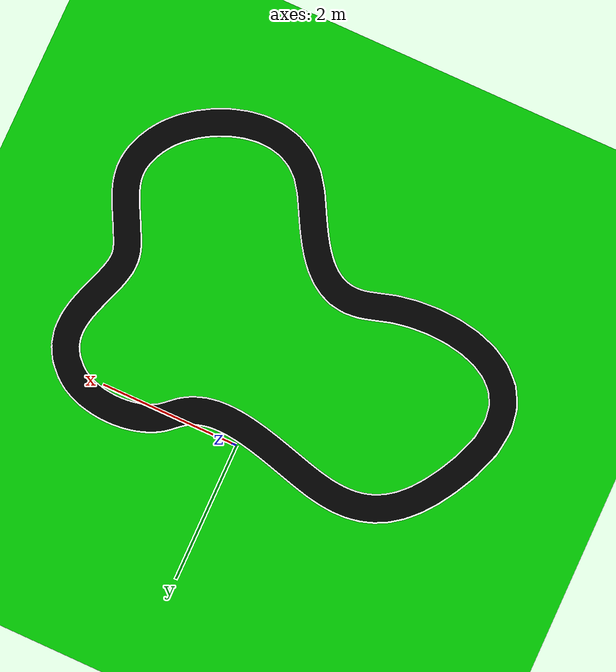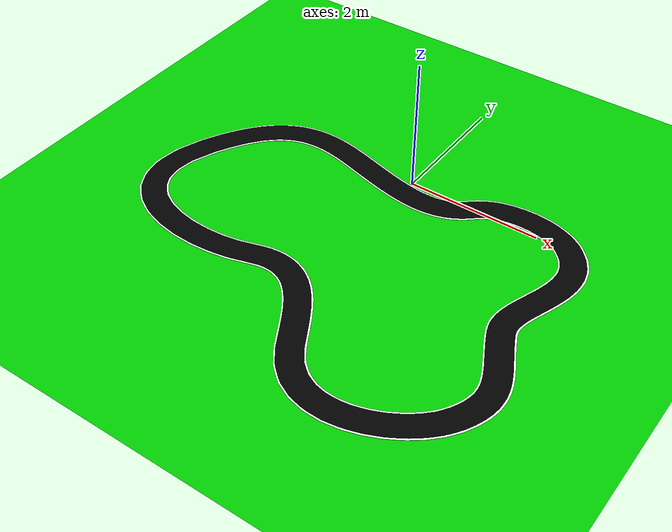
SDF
<?xml version="1.0" ?>

<sdf version='1.6'>
  <world name='empty'>
    <physics name='4ms' type='ode'>
      <max_step_size>0.004</max_step_size>
      <real_time_factor>1</real_time_factor>
      <real_time_update_rate>250</real_time_update_rate>
    </physics>
    <plugin name='gz::sim::systems::Physics' filename='gz-sim-physics-system'/>
    <plugin name='gz::sim::systems::UserCommands' filename='gz-sim-user-commands-system'/>
    <plugin name='gz::sim::systems::SceneBroadcaster' filename='gz-sim-scene-broadcaster-system'/>
    <plugin name='gz::sim::systems::Contact' filename='gz-sim-contact-system'/>
    <plugin filename="gz-sim-sensors-system" name="gz::sim::systems::Sensors">
      <render_engine>ogre2</render_engine>
    </plugin>
    <plugin filename="gz-sim-imu-system" name="gz::sim::systems::Imu"/>
    <plugin filename="gz-sim-navsat-system" name="gz::sim::systems::NavSat"/>

    <spherical_coordinates>
      <surface_model>EARTH_WGS84</surface_model>
      <world_frame_orientation>ENU</world_frame_orientation>
      <latitude_deg>47.478950</latitude_deg>
      <longitude_deg>19.057785</longitude_deg>
      <elevation>0</elevation>
      <heading_deg>0</heading_deg>
    </spherical_coordinates>

    <gravity>0 0 -9.8000000000000007</gravity>
    <magnetic_field>5.5644999999999998e-06 2.2875799999999999e-05 -4.2388400000000002e-05</magnetic_field>
    <atmosphere type='adiabatic'/>
    <scene>
      <ambient>0.400000006 0.400000006 0.400000006 1</ambient>
      <background>0.699999988 0.699999988 0.699999988 1</background>
      <shadows>true</shadows>
    </scene>

    <model name='ground_plane'>
      <static>true</static>
      <link name='link'>
        <collision name='collision'>
          <geometry>
            <plane>
              <normal>0 0 1</normal>
              <size>100 100</size>
            </plane>
          </geometry>
          <surface>
            <friction>
              <ode>
                <mu>1</mu>
                <mu2>1</mu2>
                <fdir1>0 0 0</fdir1>
                <slip1>0</slip1>
                <slip2>0</slip2>
              </ode>
            </friction>
            <bounce/>
            <contact/>
          </surface>
        </collision>
        <pose>0 0 0.0025 0 0 0</pose>
        <visual name='visual'>
          <geometry>
            <plane>
              <normal>0 0 1</normal>
              <size>100 100</size>
            </plane>
          </geometry>
          <material>
            <ambient>0.0 0.8 0.0 1</ambient>
            <diffuse>0.0 0.8 0.0 1</diffuse>
            <specular>0.0 0.8 0.0 1</specular>
          </material>
        </visual>
      </link>
    </model>

    <model name='track_with_road'>
      <static>true</static>
      <link name='link'>
        <visual name='visual'>
          <geometry>
            <mesh>
              <uri>file:///home/mibalazs/ros2_ws/KR_project_ws/src/KogRob-EtoE-NN-Driving/gazebo_models/track_with_road/meshes/track_with_road.dae</uri>
            </mesh>
          </geometry>
        </visual>
        <collision name='collision'>
          <geometry>
            <mesh>
              <uri>file:///home/mibalazs/ros2_ws/KR_project_ws/src/KogRob-EtoE-NN-Driving/gazebo_models/track_with_road/meshes/track_with_road.dae</uri>
            </mesh>
          </geometry>
          <surface>
            <friction>
              <ode>
                <mu>100</mu>
                <mu2>50</mu2>
                <fdir1>0 0 0</fdir1>
                <slip1>0</slip1>
                <slip2>0</slip2>
              </ode>
            </friction>
          </surface>
        </collision>
        <pose>0 0 0 0 0 0</pose>
        <inertial>
          <pose>0 0 0 0 0 0</pose>
          <mass>1</mass>
          <inertia>
            <ixx>1</ixx>
            <ixy>0</ixy>
            <ixz>0</ixz>
            <iyy>1</iyy>
            <iyz>0</iyz>
            <izz>1</izz>
          </inertia>
        </inertial>
        <enable_wind>false</enable_wind>
      </link>
    </model>

    <light type="directional" name="sun">
      <cast_shadows>true</cast_shadows>
      <pose>0 0 10 0 0 0</pose>
      <diffuse>0.8 0.8 0.8 1</diffuse>
      <specular>0.2 0.2 0.2 1</specular>
      <attenuation>
        <range>1000</range>
        <constant>0.9</constant>
        <linear>0.01</linear>
        <quadratic>0.001</quadratic>
      </attenuation>
      <direction>-0.5 0.1 -0.9</direction>
    </light>
  </world>
</sdf>
